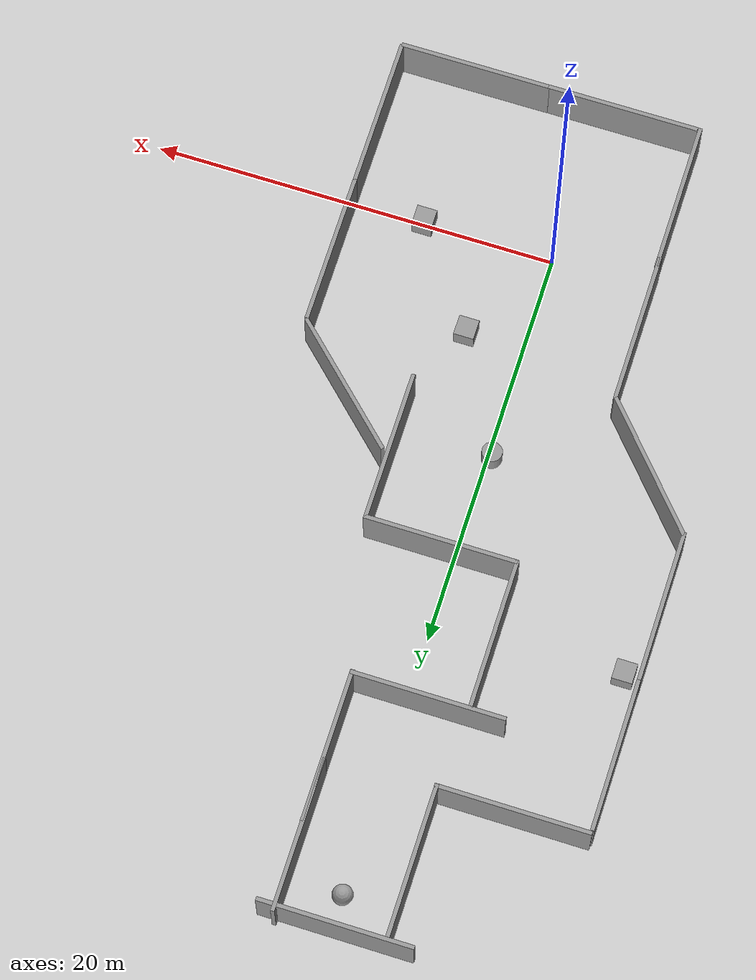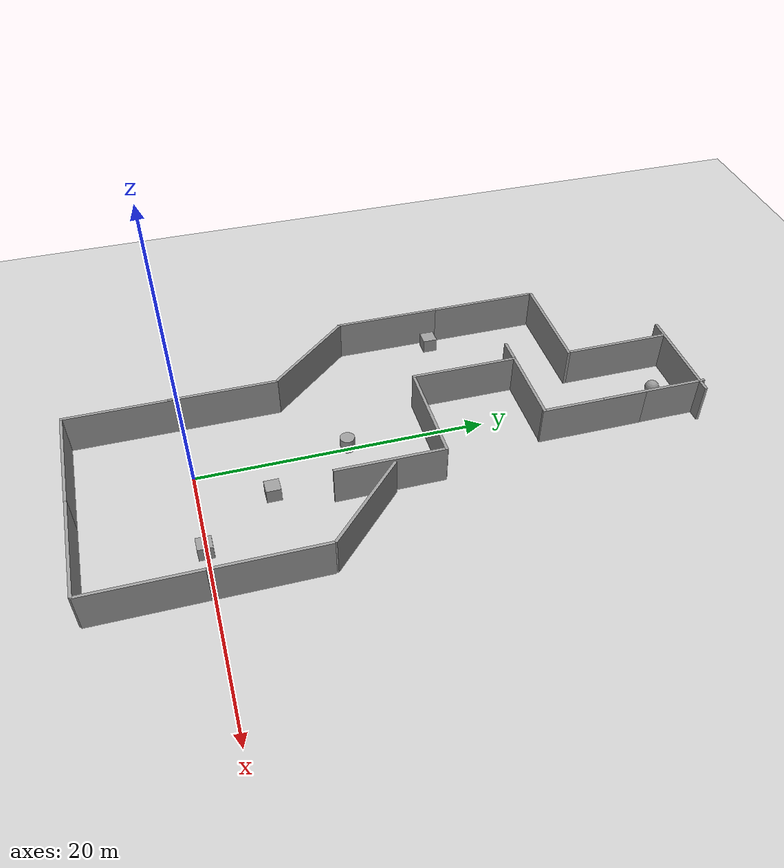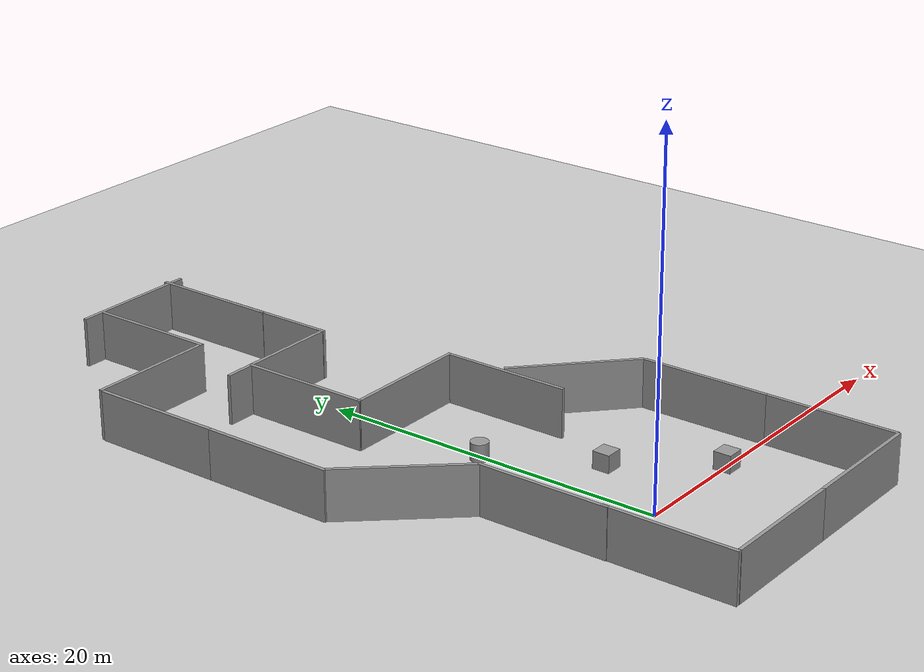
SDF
<sdf version="1.7">
 <world name="default">
  <light name="sun" type="directional">
   <pose>0 0 10 0 -0 0</pose>
   <diffuse>0.8 0.8 0.8 1</diffuse>
   <specular>0.2 0.2 0.2 1</specular>
   <attenuation>
    <range>1000</range>
    <constant>0.9</constant>
    <linear>0.01</linear>
    <quadratic>0.001</quadratic>
   </attenuation>
   <direction>-0.5 0.1 -0.9</direction>
   <spot><inner_angle>0</inner_angle><outer_angle>0</outer_angle><falloff>0</falloff></spot>
  </light>
  <model name="ground_plane">
   <static>1</static>
   <link name="link">
    <collision name="collision">
     <geometry><plane><normal>0 0 1</normal><size>100 100</size></plane></geometry>
     <surface>
      <contact><collide_bitmask>65535</collide_bitmask></contact>
      <friction><ode><mu>100</mu><mu2>50</mu2></ode></friction>
     </surface>
    </collision>
    <visual name="visual">
     <cast_shadows>0</cast_shadows>
     <geometry><plane><normal>0 0 1</normal><size>100 100</size></plane></geometry>
     <material>
      <script><uri>file://media/materials/scripts/gazebo.material</uri><name>Gazebo/Grey</name></script>
     </material>
    </visual>
   </link>
  </model>
  <gravity>0 0 -9.8</gravity>
  <magnetic_field>6e-06 2.3e-05 -4.2e-05</magnetic_field>
  <atmosphere type="adiabatic"/>
  <physics type="ode">
   <max_step_size>0.001</max_step_size>
   <real_time_factor>1</real_time_factor>
   <real_time_update_rate>1000</real_time_update_rate>
  </physics>
  <scene><ambient>0.4 0.4 0.4 1</ambient><background>0.7 0.7 0.7 1</background><shadows>1</shadows></scene>
  <audio><device>default</device></audio>
  <spherical_coordinates>
   <surface_model>EARTH_WGS84</surface_model>
   <latitude_deg>0</latitude_deg>
   <longitude_deg>0</longitude_deg>
   <elevation>0</elevation>
   <heading_deg>0</heading_deg>
  </spherical_coordinates>
  <model name="grey_wall">
   <static>1</static>
   <link name="link">
    <pose>0 0 1.4 0 -0 0</pose>
    <collision name="collision"><geometry><box><size>7.5 0.2 2.8</size></box></geometry></collision>
    <visual name="visual">
     <cast_shadows>0</cast_shadows>
     <geometry><box><size>7.5 0.2 2.8</size></box></geometry>
     <material>
      <script>
       <uri>model://grey_wall/materials/scripts</uri>
       <uri>model://grey_wall/materials/textures</uri>
       <name>vrc/grey_wall</name>
      </script>
     </material>
    </visual>
   </link>
   <pose>-5.04094 3.05014 0 0 0 -1.57</pose>
  </model>
  <model name="grey_wall_0">
   <static>1</static>
   <link name="link">
    <pose>0 0 1.4 0 -0 0</pose>
    <collision name="collision"><geometry><box><size>7.5 0.2 2.8</size></box></geometry></collision>
    <visual name="visual">
     <cast_shadows>0</cast_shadows>
     <geometry><box><size>7.5 0.2 2.8</size></box></geometry>
     <material>
      <script>
       <uri>model://grey_wall/materials/scripts</uri>
       <uri>model://grey_wall/materials/textures</uri>
       <name>vrc/grey_wall</name>
      </script>
     </material>
    </visual>
   </link>
   <pose>-5 -4 0 0 0 -1.57</pose>
  </model>
  <model name="grey_wall_1">
   <static>1</static>
   <link name="link">
    <pose>0 0 1.4 0 -0 0</pose>
    <collision name="collision"><geometry><box><size>7.5 0.2 2.8</size></box></geometry></collision>
    <visual name="visual">
     <cast_shadows>0</cast_shadows>
     <geometry><box><size>7.5 0.2 2.8</size></box></geometry>
     <material>
      <script>
       <uri>model://grey_wall/materials/scripts</uri>
       <uri>model://grey_wall/materials/textures</uri>
       <name>vrc/grey_wall</name>
      </script>
     </material>
    </visual>
   </link>
   <pose>-1.13061 -7.66573 0 0 -0 0</pose>
  </model>
  <model name="grey_wall_1_clone">
   <static>1</static>
   <link name="link">
    <pose>0 0 1.4 0 -0 0</pose>
    <collision name="collision"><geometry><box><size>7.5 0.2 2.8</size></box></geometry></collision>
    <visual name="visual">
     <cast_shadows>0</cast_shadows>
     <geometry><box><size>7.5 0.2 2.8</size></box></geometry>
     <material>
      <script>
       <uri>model://grey_wall/materials/scripts</uri>
       <uri>model://grey_wall/materials/textures</uri>
       <name>vrc/grey_wall</name>
      </script>
     </material>
    </visual>
   </link>
   <pose>6.31025 -7.65941 0 0 -0 0</pose>
  </model>
  <model name="grey_wall_2">
   <static>1</static>
   <link name="link">
    <pose>0 0 1.4 0 -0 0</pose>
    <collision name="collision"><geometry><box><size>7.5 0.2 2.8</size></box></geometry></collision>
    <visual name="visual">
     <cast_shadows>0</cast_shadows>
     <geometry><box><size>7.5 0.2 2.8</size></box></geometry>
     <material>
      <script>
       <uri>model://grey_wall/materials/scripts</uri>
       <uri>model://grey_wall/materials/textures</uri>
       <name>vrc/grey_wall</name>
      </script>
     </material>
    </visual>
   </link>
   <pose>10.0435 -3.89875 0 0 0 -1.57</pose>
  </model>
  <model name="grey_wall_2_clone">
   <static>1</static>
   <link name="link">
    <pose>0 0 1.4 0 -0 0</pose>
    <collision name="collision"><geometry><box><size>7.5 0.2 2.8</size></box></geometry></collision>
    <visual name="visual">
     <cast_shadows>0</cast_shadows>
     <geometry><box><size>7.5 0.2 2.8</size></box></geometry>
     <material>
      <script>
       <uri>model://grey_wall/materials/scripts</uri>
       <uri>model://grey_wall/materials/textures</uri>
       <name>vrc/grey_wall</name>
      </script>
     </material>
    </visual>
   </link>
   <pose>10.04 3.5753 0 0 0 -1.57</pose>
  </model>
  <model name="grey_wall_2_clone_clone">
   <static>1</static>
   <link name="link">
    <pose>0 0 1.4 0 -0 0</pose>
    <collision name="collision"><geometry><box><size>7.5 0.2 2.8</size></box></geometry></collision>
    <visual name="visual">
     <cast_shadows>0</cast_shadows>
     <geometry><box><size>7.5 0.2 2.8</size></box></geometry>
     <material>
      <script>
       <uri>model://grey_wall/materials/scripts</uri>
       <uri>model://grey_wall/materials/textures</uri>
       <name>vrc/grey_wall</name>
      </script>
     </material>
    </visual>
   </link>
   <pose>7.32827 9.93555 -0 0 0 -0.758071</pose>
  </model>
  <model name="grey_wall_2_clone_clone_clone">
   <static>1</static>
   <link name="link">
    <pose>0 0 1.4 0 -0 0</pose>
    <collision name="collision"><geometry><box><size>7.5 0.2 2.8</size></box></geometry></collision>
    <visual name="visual">
     <cast_shadows>0</cast_shadows>
     <geometry><box><size>7.5 0.2 2.8</size></box></geometry>
     <material>
      <script>
       <uri>model://grey_wall/materials/scripts</uri>
       <uri>model://grey_wall/materials/textures</uri>
       <name>vrc/grey_wall</name>
      </script>
     </material>
    </visual>
   </link>
   <pose>4.34809 12.271 0 0 0 -1.57</pose>
  </model>
  <model name="grey_wall_clone">
   <static>1</static>
   <link name="link">
    <pose>0 0 1.4 0 -0 0</pose>
    <collision name="collision"><geometry><box><size>7.5 0.2 2.8</size></box></geometry></collision>
    <visual name="visual">
     <cast_shadows>0</cast_shadows>
     <geometry><box><size>7.5 0.2 2.8</size></box></geometry>
     <material>
      <script>
       <uri>model://grey_wall/materials/scripts</uri>
       <uri>model://grey_wall/materials/textures</uri>
       <name>vrc/grey_wall</name>
      </script>
     </material>
    </visual>
   </link>
   <pose>-7.54047 9.54869 0 0 0 -0.846454</pose>
  </model>
  <model name="unit_box">
   <pose>2.86898 4.79934 0.499995 1e-05 -0 0</pose>
   <link name="link">
    <inertial>
     <mass>1</mass>
     <inertia>
      <ixx>0.166667</ixx>
      <ixy>0</ixy>
      <ixz>0</ixz>
      <iyy>0.166667</iyy>
      <iyz>0</iyz>
      <izz>0.166667</izz>
     </inertia>
    </inertial>
    <collision name="collision"><geometry><box><size>1 1 1</size></box></geometry></collision>
    <visual name="visual">
     <geometry><box><size>1 1 1</size></box></geometry>
     <material>
      <script><name>Gazebo/Grey</name><uri>file://media/materials/scripts/gazebo.material</uri></script>
     </material>
    </visual>
   </link>
  </model>
  <model name="unit_box_0">
   <pose>6.50472 -0.054653 0.499995 0 1e-05 0</pose>
   <link name="link">
    <inertial>
     <mass>1</mass>
     <inertia>
      <ixx>0.166667</ixx>
      <ixy>0</ixy>
      <ixz>0</ixz>
      <iyy>0.166667</iyy>
      <iyz>0</iyz>
      <izz>0.166667</izz>
     </inertia>
    </inertial>
    <collision name="collision"><geometry><box><size>1 1 1</size></box></geometry></collision>
    <visual name="visual">
     <geometry><box><size>1 1 1</size></box></geometry>
     <material>
      <script><name>Gazebo/Grey</name><uri>file://media/materials/scripts/gazebo.material</uri></script>
     </material>
    </visual>
   </link>
  </model>
  <model name="unit_cylinder">
   <pose>-0.168777 10.4772 0.499997 3e-06 -2e-06 0</pose>
   <link name="link">
    <inertial>
     <mass>1</mass>
     <inertia><ixx>0.145833</ixx><ixy>0</ixy><ixz>0</ixz><iyy>0.145833</iyy><iyz>0</iyz><izz>0.125</izz></inertia>
    </inertial>
    <collision name="collision">
     <geometry><cylinder><radius>0.5</radius><length>1</length></cylinder></geometry>
    </collision>
    <visual name="visual">
     <geometry><cylinder><radius>0.5</radius><length>1</length></cylinder></geometry>
     <material>
      <script><name>Gazebo/Grey</name><uri>file://media/materials/scripts/gazebo.material</uri></script>
     </material>
    </visual>
   </link>
  </model>
  <model name="grey_wall_1_clone_clone">
   <static>1</static>
   <link name="link">
    <pose>0 0 1.4 0 -0 0</pose>
    <collision name="collision"><geometry><box><size>7.5 0.2 2.8</size></box></geometry></collision>
    <visual name="visual">
     <cast_shadows>0</cast_shadows>
     <geometry><box><size>7.5 0.2 2.8</size></box></geometry>
     <material>
      <script>
       <uri>model://grey_wall/materials/scripts</uri>
       <uri>model://grey_wall/materials/textures</uri>
       <name>vrc/grey_wall</name>
      </script>
     </material>
    </visual>
   </link>
   <pose>0.694479 15.9472 0 0 -0 0</pose>
  </model>
  <model name="grey_wall_clone_0">
   <static>1</static>
   <link name="link">
    <pose>0 0 1.4 0 -0 0</pose>
    <collision name="collision"><geometry><box><size>7.5 0.2 2.8</size></box></geometry></collision>
    <visual name="visual">
     <cast_shadows>0</cast_shadows>
     <geometry><box><size>7.5 0.2 2.8</size></box></geometry>
     <material>
      <script>
       <uri>model://grey_wall/materials/scripts</uri>
       <uri>model://grey_wall/materials/textures</uri>
       <name>vrc/grey_wall</name>
      </script>
     </material>
    </visual>
   </link>
   <pose>-3.02742 19.6279 0 0 0 -1.57</pose>
  </model>
  <model name="grey_wall_2_clone_clone_clone_clone">
   <static>1</static>
   <link name="link">
    <pose>0 0 1.4 0 -0 0</pose>
    <collision name="collision"><geometry><box><size>7.5 0.2 2.8</size></box></geometry></collision>
    <visual name="visual">
     <cast_shadows>0</cast_shadows>
     <geometry><box><size>7.5 0.2 2.8</size></box></geometry>
     <material>
      <script>
       <uri>model://grey_wall/materials/scripts</uri>
       <uri>model://grey_wall/materials/textures</uri>
       <name>vrc/grey_wall</name>
      </script>
     </material>
    </visual>
   </link>
   <pose>-10.0142 15.9441 0 0 0 -1.57</pose>
  </model>
  <model name="unit_box_1">
   <pose>-9.22059 18.9486 0.499995 1e-05 -0 0</pose>
   <link name="link">
    <inertial>
     <mass>1</mass>
     <inertia>
      <ixx>0.166667</ixx>
      <ixy>0</ixy>
      <ixz>0</ixz>
      <iyy>0.166667</iyy>
      <iyz>0</iyz>
      <izz>0.166667</izz>
     </inertia>
    </inertial>
    <collision name="collision"><geometry><box><size>1 1 1</size></box></geometry></collision>
    <visual name="visual">
     <geometry><box><size>1 1 1</size></box></geometry>
     <material>
      <script><name>Gazebo/Grey</name><uri>file://media/materials/scripts/gazebo.material</uri></script>
     </material>
    </visual>
   </link>
  </model>
  <model name="grey_wall_clone_0_clone">
   <static>1</static>
   <link name="link">
    <pose>0 0 1.4 0 -0 0</pose>
    <collision name="collision"><geometry><box><size>7.5 0.2 2.8</size></box></geometry></collision>
    <visual name="visual">
     <cast_shadows>0</cast_shadows>
     <geometry><box><size>7.5 0.2 2.8</size></box></geometry>
     <material>
      <script>
       <uri>model://grey_wall/materials/scripts</uri>
       <uri>model://grey_wall/materials/textures</uri>
       <name>vrc/grey_wall</name>
      </script>
     </material>
    </visual>
   </link>
   <pose>-10.0173 23.4085 0 0 0 -1.57</pose>
  </model>
  <model name="grey_wall_1_clone_clone_clone">
   <static>1</static>
   <link name="link">
    <pose>0 0 1.4 0 -0 0</pose>
    <collision name="collision"><geometry><box><size>7.5 0.2 2.8</size></box></geometry></collision>
    <visual name="visual">
     <cast_shadows>0</cast_shadows>
     <geometry><box><size>7.5 0.2 2.8</size></box></geometry>
     <material>
      <script>
       <uri>model://grey_wall/materials/scripts</uri>
       <uri>model://grey_wall/materials/textures</uri>
       <name>vrc/grey_wall</name>
      </script>
     </material>
    </visual>
   </link>
   <pose>-6.31494 27.2857 0 0 -0 0</pose>
  </model>
  <model name="grey_wall_1_clone_clone_clone_clone">
   <static>1</static>
   <link name="link">
    <pose>0 0 1.4 0 -0 0</pose>
    <collision name="collision"><geometry><box><size>7.5 0.2 2.8</size></box></geometry></collision>
    <visual name="visual">
     <cast_shadows>0</cast_shadows>
     <geometry><box><size>7.5 0.2 2.8</size></box></geometry>
     <material>
      <script>
       <uri>model://grey_wall/materials/scripts</uri>
       <uri>model://grey_wall/materials/textures</uri>
       <name>vrc/grey_wall</name>
      </script>
     </material>
    </visual>
   </link>
   <pose>-1.01744 23.3235 0 0 -0 0</pose>
  </model>
  <model name="grey_wall_clone_0_clone_0">
   <static>1</static>
   <link name="link">
    <pose>0 0 1.4 0 -0 0</pose>
    <collision name="collision"><geometry><box><size>7.5 0.2 2.8</size></box></geometry></collision>
    <visual name="visual">
     <cast_shadows>0</cast_shadows>
     <geometry><box><size>7.5 0.2 2.8</size></box></geometry>
     <material>
      <script>
       <uri>model://grey_wall/materials/scripts</uri>
       <uri>model://grey_wall/materials/textures</uri>
       <name>vrc/grey_wall</name>
      </script>
     </material>
    </visual>
   </link>
   <pose>2.64053 26.9527 0 0 0 -1.57</pose>
  </model>
  <model name="grey_wall_clone_0_clone_clone">
   <static>1</static>
   <link name="link">
    <pose>0 0 1.4 0 -0 0</pose>
    <collision name="collision"><geometry><box><size>7.5 0.2 2.8</size></box></geometry></collision>
    <visual name="visual">
     <cast_shadows>0</cast_shadows>
     <geometry><box><size>7.5 0.2 2.8</size></box></geometry>
     <material>
      <script>
       <uri>model://grey_wall/materials/scripts</uri>
       <uri>model://grey_wall/materials/textures</uri>
       <name>vrc/grey_wall</name>
      </script>
     </material>
    </visual>
   </link>
   <pose>-2.67639 30.9483 0 0 0 -1.57</pose>
  </model>
  <model name="grey_wall_clone_0_clone_clone_clone">
   <static>1</static>
   <link name="link">
    <pose>0 0 1.4 0 -0 0</pose>
    <collision name="collision"><geometry><box><size>7.5 0.2 2.8</size></box></geometry></collision>
    <visual name="visual">
     <cast_shadows>0</cast_shadows>
     <geometry><box><size>7.5 0.2 2.8</size></box></geometry>
     <material>
      <script>
       <uri>model://grey_wall/materials/scripts</uri>
       <uri>model://grey_wall/materials/textures</uri>
       <name>vrc/grey_wall</name>
      </script>
     </material>
    </visual>
   </link>
   <pose>2.61943 31.3314 0 0 0 -1.57</pose>
  </model>
  <model name="grey_wall_1_clone_clone_clone_clone_clone">
   <static>1</static>
   <link name="link">
    <pose>0 0 1.4 0 -0 0</pose>
    <collision name="collision"><geometry><box><size>7.5 0.2 2.8</size></box></geometry></collision>
    <visual name="visual">
     <cast_shadows>0</cast_shadows>
     <geometry><box><size>7.5 0.2 2.8</size></box></geometry>
     <material>
      <script>
       <uri>model://grey_wall/materials/scripts</uri>
       <uri>model://grey_wall/materials/textures</uri>
       <name>vrc/grey_wall</name>
      </script>
     </material>
    </visual>
   </link>
   <pose>-0.24012 34.7492 0 0 -0 0</pose>
  </model>
  <model name="unit_sphere">
   <pose>0.029291 32.9043 0.5 0 -0 0</pose>
   <link name="link">
    <inertial>
     <mass>1</mass>
     <inertia><ixx>0.1</ixx><ixy>0</ixy><ixz>0</ixz><iyy>0.1</iyy><iyz>0</iyz><izz>0.1</izz></inertia>
    </inertial>
    <collision name="collision"><geometry><sphere><radius>0.5</radius></sphere></geometry></collision>
    <visual name="visual">
     <geometry><sphere><radius>0.5</radius></sphere></geometry>
     <material>
      <script><name>Gazebo/Grey</name><uri>file://media/materials/scripts/gazebo.material</uri></script>
     </material>
    </visual>
   </link>
  </model>
 </world>
</sdf>
